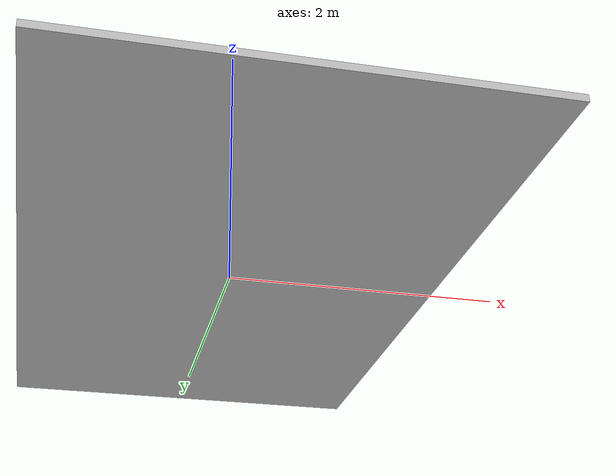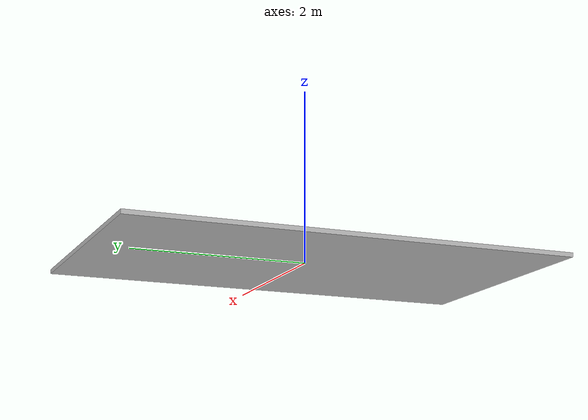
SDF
<?xml version="1.0" ?>
<sdf version="1.5">
  <model name="skyline3">
    <static>true</static>
    <link name="body">
      <pose>0 0 0 0 0 0</pose>
      <visual name="visual">
	<geometry>
	  <box>
	    <size>3 5 0.05</size>
	  </box>
	</geometry>
	<material>
	  <script>
            <uri>model://skyline3</uri>
            <name>KansasCity/Diffuse</name>
          </script>
	</material>
      </visual>
    </link>
  </model>
</sdf>
